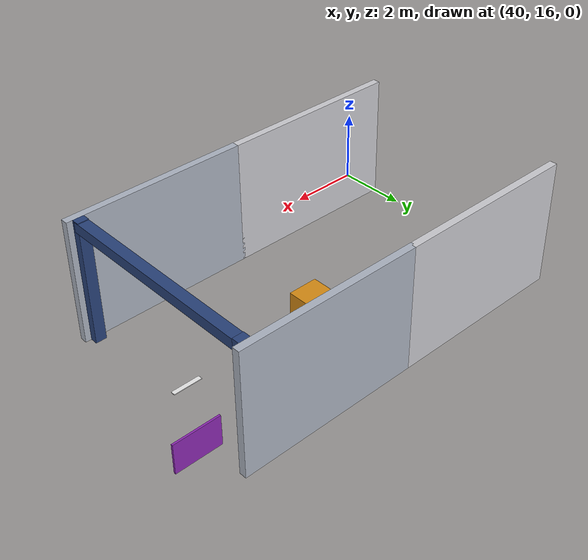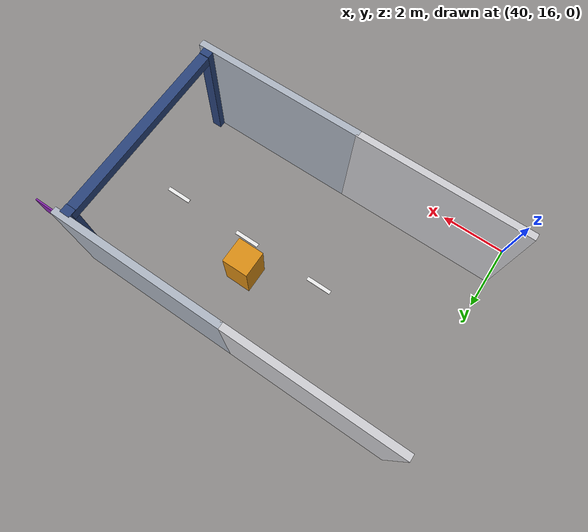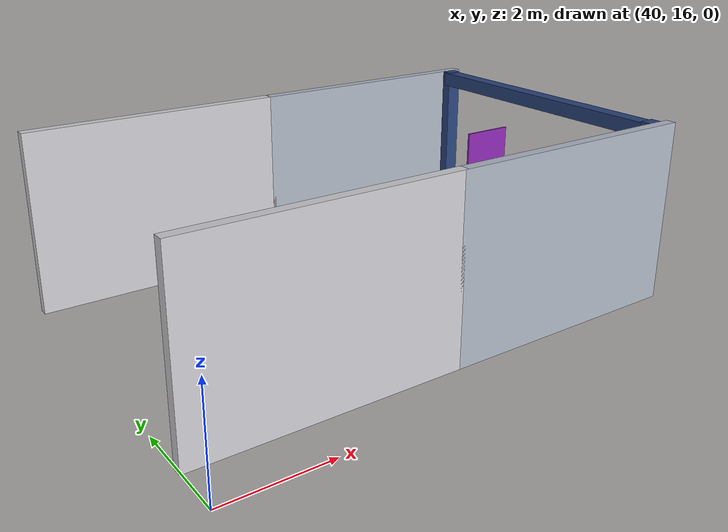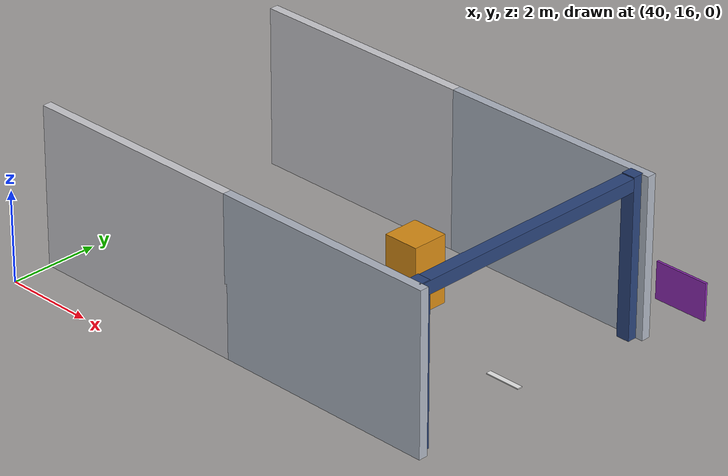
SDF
<sdf version="1.10">
 <world name="tunnel_circuit">
  <model name="tw_Bo_8">
   <static>true</static>
   <pose>42.500 23.000 1.750 0 0 0.0000</pose>
   <link name="link">
    <collision name="col"><geometry><box><size>5.060 0.200 3.500</size></box></geometry></collision>
    <visual name="vis">
     <geometry><box><size>5.060 0.200 3.500</size></box></geometry>
     <material>
      <ambient>0.50 0.50 0.52 1</ambient>
      <diffuse>0.80 0.80 0.82 1</diffuse>
      <specular>0.1 0.1 0.1 1</specular>
      <pbr>
       <metal><albedo_map>detail.png</albedo_map><roughness>0.92</roughness><metalness>0.0</metalness></metal>
      </pbr>
     </material>
    </visual>
   </link>
  </model>
  <model name="tw_Bo_9">
   <static>true</static>
   <pose>47.500 23.000 1.750 0 0 0.0000</pose>
   <link name="link">
    <collision name="col"><geometry><box><size>5.060 0.200 3.500</size></box></geometry></collision>
    <visual name="vis">
     <geometry><box><size>5.060 0.200 3.500</size></box></geometry>
     <material>
      <ambient>0.42 0.44 0.48 1</ambient>
      <diffuse>0.68 0.71 0.76 1</diffuse>
      <specular>0.1 0.1 0.1 1</specular>
      <pbr>
       <metal><albedo_map>detail.png</albedo_map><roughness>0.9</roughness><metalness>0.0</metalness></metal>
      </pbr>
     </material>
    </visual>
   </link>
  </model>
  <model name="tw_Bi_8">
   <static>true</static>
   <pose>42.500 17.000 1.750 0 0 0.0000</pose>
   <link name="link">
    <collision name="col"><geometry><box><size>5.060 0.200 3.500</size></box></geometry></collision>
    <visual name="vis">
     <geometry><box><size>5.060 0.200 3.500</size></box></geometry>
     <material>
      <ambient>0.50 0.50 0.52 1</ambient>
      <diffuse>0.80 0.80 0.82 1</diffuse>
      <specular>0.1 0.1 0.1 1</specular>
      <pbr>
       <metal><albedo_map>detail.png</albedo_map><roughness>0.92</roughness><metalness>0.0</metalness></metal>
      </pbr>
     </material>
    </visual>
   </link>
  </model>
  <model name="tw_Bi_9">
   <static>true</static>
   <pose>47.500 17.000 1.750 0 0 0.0000</pose>
   <link name="link">
    <collision name="col"><geometry><box><size>5.060 0.200 3.500</size></box></geometry></collision>
    <visual name="vis">
     <geometry><box><size>5.060 0.200 3.500</size></box></geometry>
     <material>
      <ambient>0.42 0.44 0.48 1</ambient>
      <diffuse>0.68 0.71 0.76 1</diffuse>
      <specular>0.1 0.1 0.1 1</specular>
      <pbr>
       <metal><albedo_map>detail.png</albedo_map><roughness>0.9</roughness><metalness>0.0</metalness></metal>
      </pbr>
     </material>
    </visual>
   </link>
  </model>
  <model name="rib12_p">
   <static>true</static>
   <pose>49.717 17.180 1.750 0 0 3.1416</pose>
   <link name="link">
    <collision name="col"><geometry><box><size>0.300 0.250 3.500</size></box></geometry></collision>
    <visual name="vis">
     <geometry><box><size>0.300 0.250 3.500</size></box></geometry>
     <material>
      <ambient>0.10 0.16 0.30 1</ambient>
      <diffuse>0.16 0.26 0.48 1</diffuse>
      <specular>0.3 0.3 0.35 1</specular>
     </material>
    </visual>
   </link>
  </model>
  <model name="rib12_m">
   <static>true</static>
   <pose>49.717 22.820 1.750 0 0 3.1416</pose>
   <link name="link">
    <collision name="col"><geometry><box><size>0.300 0.250 3.500</size></box></geometry></collision>
    <visual name="vis">
     <geometry><box><size>0.300 0.250 3.500</size></box></geometry>
     <material>
      <ambient>0.10 0.16 0.30 1</ambient>
      <diffuse>0.16 0.26 0.48 1</diffuse>
      <specular>0.3 0.3 0.35 1</specular>
     </material>
    </visual>
   </link>
  </model>
  <model name="rib12_c">
   <static>true</static>
   <pose>49.717 20.000 3.340 0 0 3.1416</pose>
   <link name="link">
    <collision name="col"><geometry><box><size>0.300 5.700 0.280</size></box></geometry></collision>
    <visual name="vis">
     <geometry><box><size>0.300 5.700 0.280</size></box></geometry>
     <material>
      <ambient>0.10 0.16 0.30 1</ambient>
      <diffuse>0.16 0.26 0.48 1</diffuse>
      <specular>0.3 0.3 0.35 1</specular>
     </material>
    </visual>
   </link>
  </model>
  <model name="sign9">
   <static>true</static>
   <pose>50.985 22.840 1.500 0 0 3.1416</pose>
   <link name="link">
    <visual name="vis">
     <geometry><box><size>1.200 0.050 0.800</size></box></geometry>
     <material>
      <ambient>0.35 0.10 0.45 1</ambient>
      <diffuse>0.55 0.16 0.70 1</diffuse>
      <specular>0.1 0.1 0.1 1</specular>
     </material>
    </visual>
   </link>
  </model>
  <model name="dash47">
   <static>true</static>
   <pose>49.197 20.000 0.012 0 0 3.1416</pose>
   <link name="link">
    <visual name="vis">
     <geometry><box><size>0.800 0.120 0.020</size></box></geometry>
     <material>
      <ambient>0.7 0.7 0.7 1</ambient>
      <diffuse>0.92 0.92 0.92 1</diffuse>
      <specular>0.1 0.1 0.1 1</specular>
     </material>
    </visual>
   </link>
  </model>
  <model name="dash48">
   <static>true</static>
   <pose>46.596 20.000 0.012 0 0 3.1416</pose>
   <link name="link">
    <visual name="vis">
     <geometry><box><size>0.800 0.120 0.020</size></box></geometry>
     <material>
      <ambient>0.7 0.7 0.7 1</ambient>
      <diffuse>0.92 0.92 0.92 1</diffuse>
      <specular>0.1 0.1 0.1 1</specular>
     </material>
    </visual>
   </link>
  </model>
  <model name="dash49">
   <static>true</static>
   <pose>43.996 20.000 0.012 0 0 3.1416</pose>
   <link name="link">
    <visual name="vis">
     <geometry><box><size>0.800 0.120 0.020</size></box></geometry>
     <material>
      <ambient>0.7 0.7 0.7 1</ambient>
      <diffuse>0.92 0.92 0.92 1</diffuse>
      <specular>0.1 0.1 0.1 1</specular>
     </material>
    </visual>
   </link>
  </model>
  <model name="obs_B1">
   <static>true</static>
   <pose>46.000 20.900 0.750 0 0 0.0000</pose>
   <link name="link">
    <collision name="col"><geometry><box><size>0.800 0.800 1.500</size></box></geometry></collision>
    <visual name="vis">
     <geometry><box><size>0.800 0.800 1.500</size></box></geometry>
     <material>
      <ambient>0.45 0.30 0.05 1</ambient>
      <diffuse>0.85 0.55 0.08 1</diffuse>
      <specular>0.1 0.1 0.1 1</specular>
     </material>
    </visual>
   </link>
  </model>
 </world>
</sdf>
